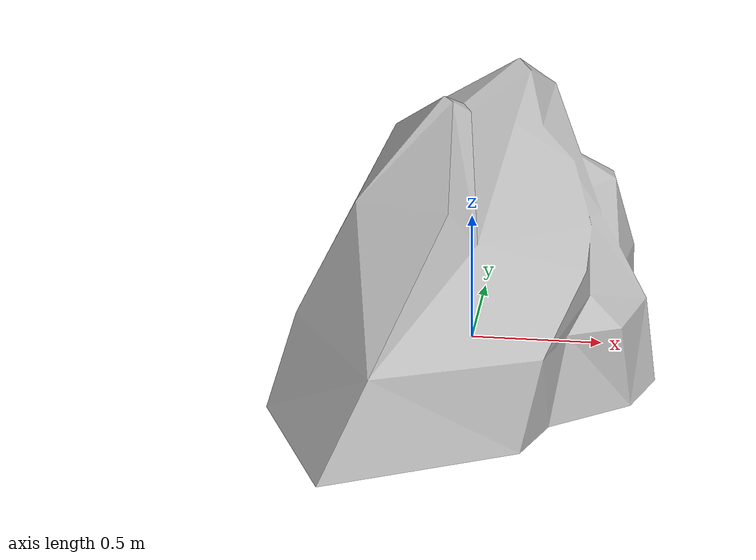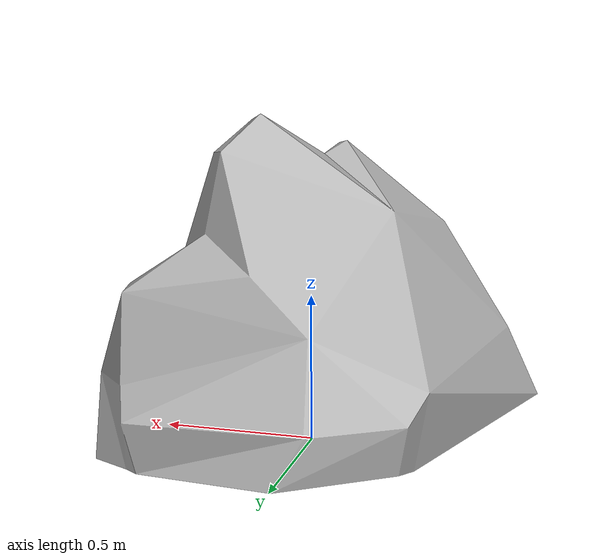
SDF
<?xml version="1.0" ?>
<sdf version="1.5">
  <model name="mars_rock_3">
    <static>true</static>
    <link name="link">
      <collision name="collision">
        <geometry>
          <mesh>
            <uri>model://mars_rock_3/meshes/mars_rock_3.obj</uri>
            <scale>0.03 0.03 0.03</scale>
          </mesh>
        </geometry>
      </collision>
      <visual name="visual">
        <geometry>
          <mesh>
            <uri>model://mars_rock_3/meshes/mars_rock_3.obj</uri>
            <scale>0.03 0.03 0.03</scale>
          </mesh>
        </geometry>
      </visual>
    </link>
  </model>
</sdf>
